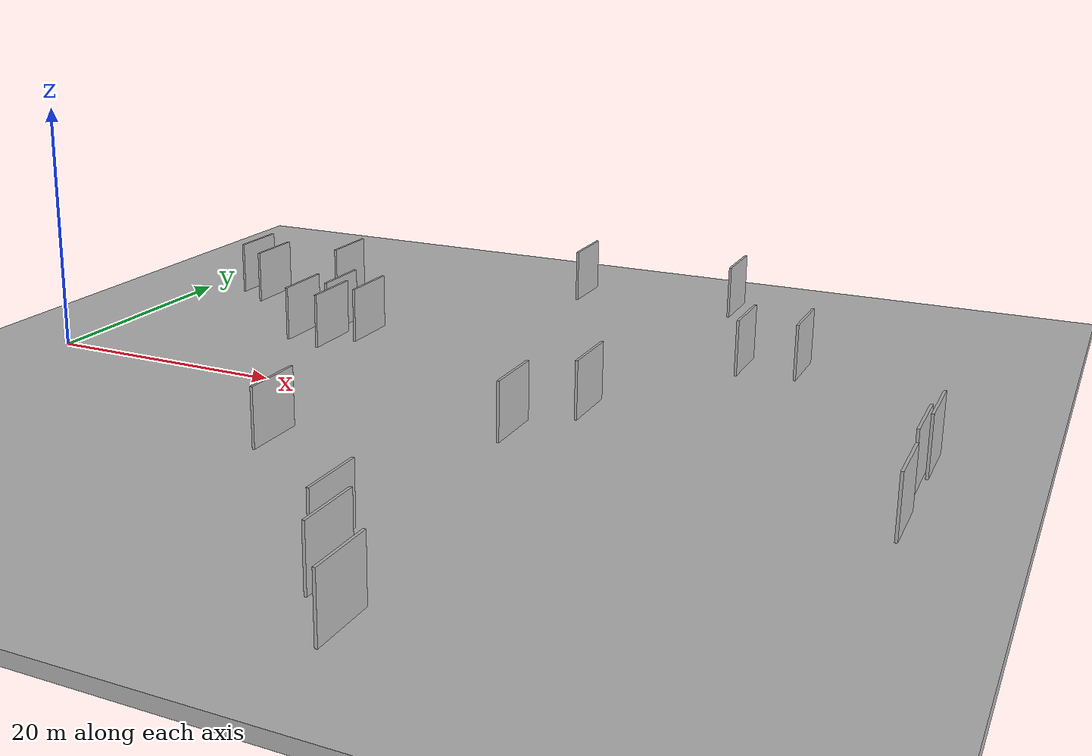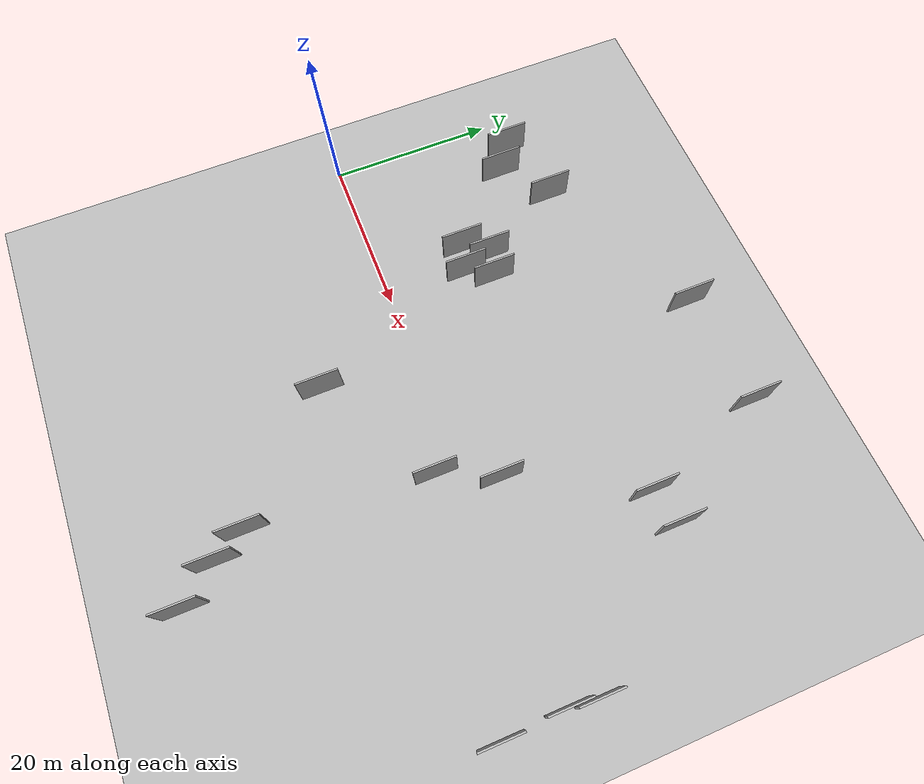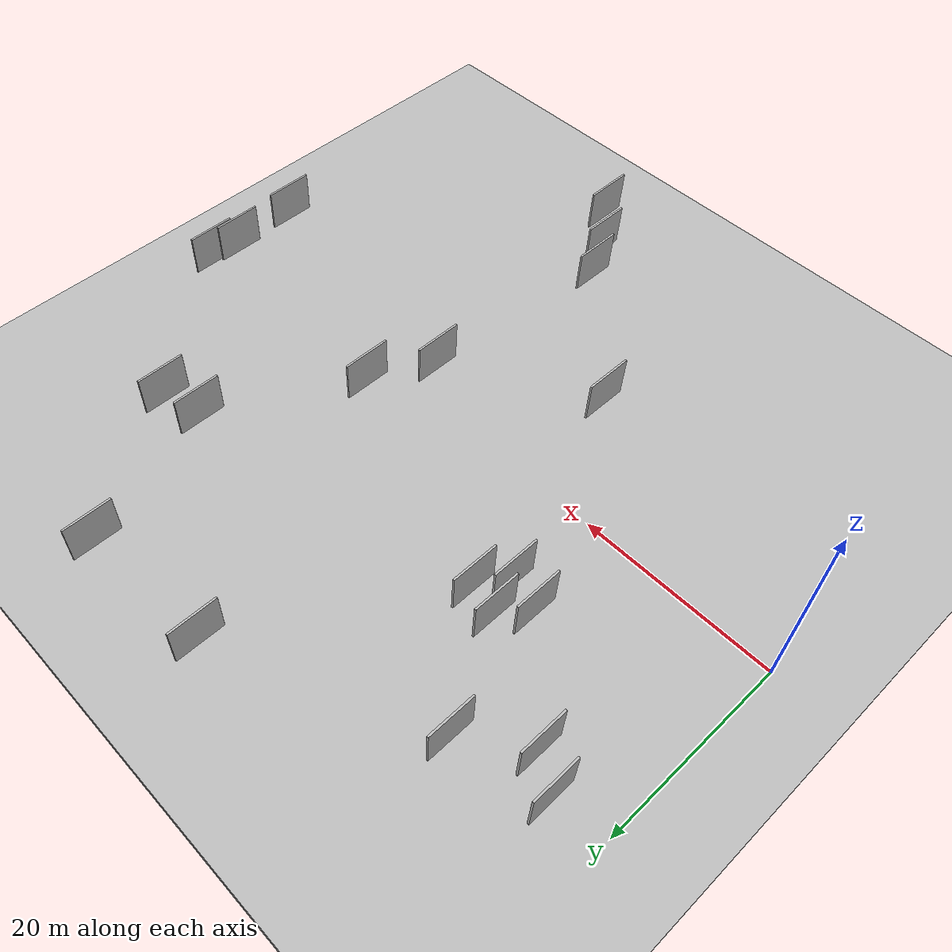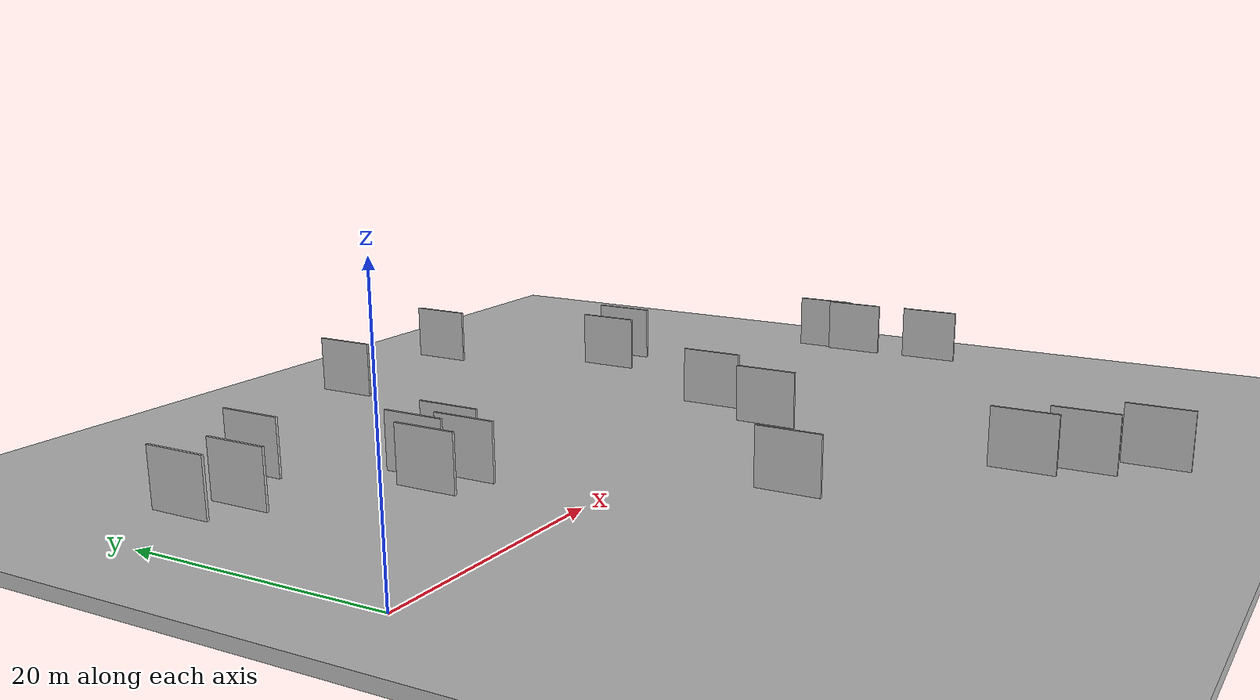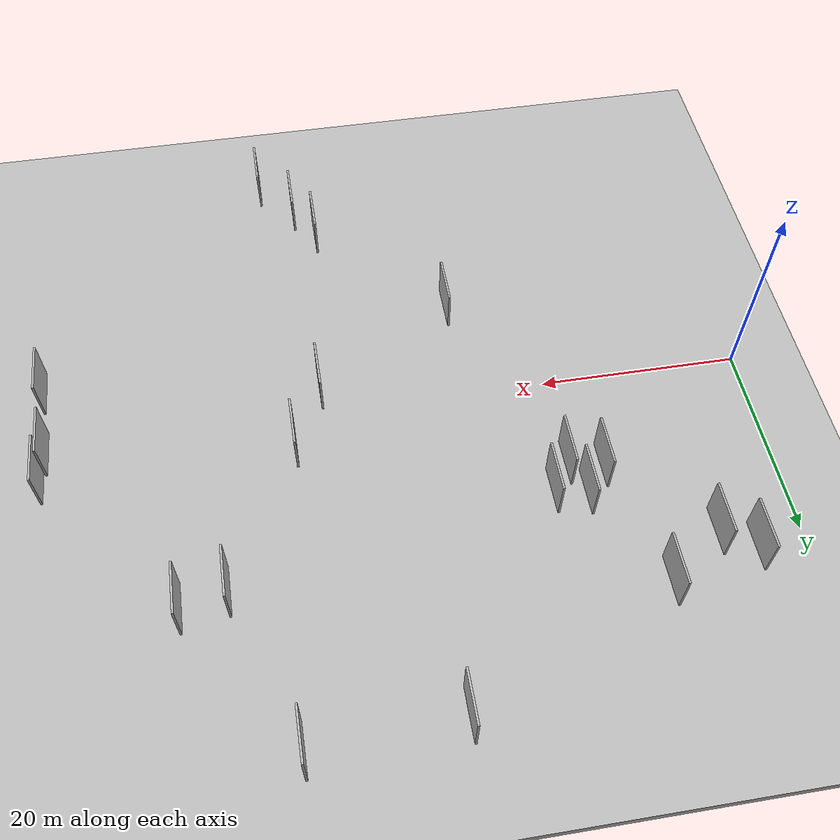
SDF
<?xml version="1.0" encoding="utf-8"?>

<sdf version="1.6">

   <world name="default">

      <gui fullscreen="0">

         <camera name="user_camera">

            <pose>-15 0 4.57585 0 0 0</pose>

            <view_controller>orbit</view_controller>

         </camera>

      </gui>

      <scene>

         <sky>

           <clouds>

             <speed>12</speed>

           </clouds>

         </sky>

         <ambient>0.4 0.4 0.4 1</ambient>

         <background>0.7 0.7 0.7 1</background>

         <shadows>1</shadows>

      </scene>

      <gravity>0 0 -9.8066</gravity>

      <magnetic_field>6e-06 2.3e-05 -4.2e-05</magnetic_field>

      <physics default="0" name="default_physics" type="ode">

         <ode>

            <solver>

               <type>quick</type>

               <iters>10</iters>

               <sor>1.0</sor>

               <use_dynamic_moi_rescaling>0</use_dynamic_moi_rescaling>

            </solver>

            <constraints>

               <cfm>0</cfm>

               <erp>0.2</erp>

               <contact_max_correcting_vel>100</contact_max_correcting_vel>

               <contact_surface_layer>0.001</contact_surface_layer>

            </constraints>

         </ode>

         <max_step_size>0.004</max_step_size>

         <real_time_factor>1</real_time_factor>

         <real_time_update_rate>250</real_time_update_rate>

      </physics>

      <light name="sun" type="directional">

         <cast_shadows>1</cast_shadows>

         <pose>0 0 10 0 0 0</pose>

         <diffuse>0.8 0.8 0.8 1</diffuse>

         <specular>0.2 0.2 0.2 1</specular>

         <attenuation>

            <range>1000</range>

            <constant>0.9</constant>

            <linear>0.01</linear>

            <quadratic>0.001</quadratic>

         </attenuation>

         <direction>-0.5 0.1 -0.9</direction>

      </light>

      <include>

         <name>ground_plane_1</name>

         <uri>model://HANNAS_ground_plane</uri>

         <pose>0 0 0  0 0 0</pose>

      </include>

      <include>

         <name>ground_plane_2</name>

         <uri>model://HANNAS_ground_plane</uri>

         <pose>100 0 0  0 0 0</pose>

      </include>

      <model name="HANNAS_wall_1">

         <static>1</static>

         <pose frame="">42.5222 -2.7553 0.0 0.000000 0.000000 1.570796</pose>

         <link name="link">

            <pose frame="">0 0 2.50 0 0 0</pose>

            <collision name="collision">

               <geometry>

                  <box>

                     <size>5.00 0.2 5.00</size>

                  </box>

               </geometry>

               <max_contacts>10</max_contacts>

               <surface>

                  <contact>

                     <ode/>

                  </contact>

                  <bounce/>

                  <friction>

                     <torsional>

                        <ode/>

                     </torsional>

                     <ode/>

                  </friction>

               </surface>

            </collision>

            <visual name="visual">

               <cast_shadows>0</cast_shadows>

               <geometry>

                  <box>

                     <size>5.00 0.2 5.00</size>

                  </box>

               </geometry>

               <material>

                  <script>

                     <uri>model://HANNAS_wall/materials/scripts</uri>

                     <uri>model://HANNAS_wall/materials/textures</uri>

                     <name>vrc/HANNAS_wall</name>

                  </script>

               </material>

            </visual>

            <self_collide>0</self_collide>

            <enable_wind>0</enable_wind>

            <kinematic>0</kinematic>

         </link>

      </model>

      <model name="HANNAS_wall_2">

         <static>1</static>

         <pose frame="">33.9787 32.7469 0.0 0.000000 0.000000 1.570796</pose>

         <link name="link">

            <pose frame="">0 0 2.50 0 0 0</pose>

            <collision name="collision">

               <geometry>

                  <box>

                     <size>5.00 0.2 5.00</size>

                  </box>

               </geometry>

               <max_contacts>10</max_contacts>

               <surface>

                  <contact>

                     <ode/>

                  </contact>

                  <bounce/>

                  <friction>

                     <torsional>

                        <ode/>

                     </torsional>

                     <ode/>

                  </friction>

               </surface>

            </collision>

            <visual name="visual">

               <cast_shadows>0</cast_shadows>

               <geometry>

                  <box>

                     <size>5.00 0.2 5.00</size>

                  </box>

               </geometry>

               <material>

                  <script>

                     <uri>model://HANNAS_wall/materials/scripts</uri>

                     <uri>model://HANNAS_wall/materials/textures</uri>

                     <name>vrc/HANNAS_wall</name>

                  </script>

               </material>

            </visual>

            <self_collide>0</self_collide>

            <enable_wind>0</enable_wind>

            <kinematic>0</kinematic>

         </link>

      </model>

      <model name="HANNAS_wall_3">

         <static>1</static>

         <pose frame="">13.6824 23.5184 0.0 0.000000 0.000000 1.570796</pose>

         <link name="link">

            <pose frame="">0 0 2.50 0 0 0</pose>

            <collision name="collision">

               <geometry>

                  <box>

                     <size>5.00 0.2 5.00</size>

                  </box>

               </geometry>

               <max_contacts>10</max_contacts>

               <surface>

                  <contact>

                     <ode/>

                  </contact>

                  <bounce/>

                  <friction>

                     <torsional>

                        <ode/>

                     </torsional>

                     <ode/>

                  </friction>

               </surface>

            </collision>

            <visual name="visual">

               <cast_shadows>0</cast_shadows>

               <geometry>

                  <box>

                     <size>5.00 0.2 5.00</size>

                  </box>

               </geometry>

               <material>

                  <script>

                     <uri>model://HANNAS_wall/materials/scripts</uri>

                     <uri>model://HANNAS_wall/materials/textures</uri>

                     <name>vrc/HANNAS_wall</name>

                  </script>

               </material>

            </visual>

            <self_collide>0</self_collide>

            <enable_wind>0</enable_wind>

            <kinematic>0</kinematic>

         </link>

      </model>

      <model name="HANNAS_wall_4">

         <static>1</static>

         <pose frame="">48.0730 33.5196 0.0 0.000000 0.000000 1.570796</pose>

         <link name="link">

            <pose frame="">0 0 2.50 0 0 0</pose>

            <collision name="collision">

               <geometry>

                  <box>

                     <size>5.00 0.2 5.00</size>

                  </box>

               </geometry>

               <max_contacts>10</max_contacts>

               <surface>

                  <contact>

                     <ode/>

                  </contact>

                  <bounce/>

                  <friction>

                     <torsional>

                        <ode/>

                     </torsional>

                     <ode/>

                  </friction>

               </surface>

            </collision>

            <visual name="visual">

               <cast_shadows>0</cast_shadows>

               <geometry>

                  <box>

                     <size>5.00 0.2 5.00</size>

                  </box>

               </geometry>

               <material>

                  <script>

                     <uri>model://HANNAS_wall/materials/scripts</uri>

                     <uri>model://HANNAS_wall/materials/textures</uri>

                     <name>vrc/HANNAS_wall</name>

                  </script>

               </material>

            </visual>

            <self_collide>0</self_collide>

            <enable_wind>0</enable_wind>

            <kinematic>0</kinematic>

         </link>

      </model>

      <model name="HANNAS_wall_5">

         <static>1</static>

         <pose frame="">40.6372 -23.8888 0.0 0.000000 0.000000 1.570796</pose>

         <link name="link">

            <pose frame="">0 0 2.50 0 0 0</pose>

            <collision name="collision">

               <geometry>

                  <box>

                     <size>5.00 0.2 5.00</size>

                  </box>

               </geometry>

               <max_contacts>10</max_contacts>

               <surface>

                  <contact>

                     <ode/>

                  </contact>

                  <bounce/>

                  <friction>

                     <torsional>

                        <ode/>

                     </torsional>

                     <ode/>

                  </friction>

               </surface>

            </collision>

            <visual name="visual">

               <cast_shadows>0</cast_shadows>

               <geometry>

                  <box>

                     <size>5.00 0.2 5.00</size>

                  </box>

               </geometry>

               <material>

                  <script>

                     <uri>model://HANNAS_wall/materials/scripts</uri>

                     <uri>model://HANNAS_wall/materials/textures</uri>

                     <name>vrc/HANNAS_wall</name>

                  </script>

               </material>

            </visual>

            <self_collide>0</self_collide>

            <enable_wind>0</enable_wind>

            <kinematic>0</kinematic>

         </link>

      </model>

      <model name="HANNAS_wall_6">

         <static>1</static>

         <pose frame="">20.0922 9.7761 0.0 0.000000 0.000000 1.570796</pose>

         <link name="link">

            <pose frame="">0 0 2.50 0 0 0</pose>

            <collision name="collision">

               <geometry>

                  <box>

                     <size>5.00 0.2 5.00</size>

                  </box>

               </geometry>

               <max_contacts>10</max_contacts>

               <surface>

                  <contact>

                     <ode/>

                  </contact>

                  <bounce/>

                  <friction>

                     <torsional>

                        <ode/>

                     </torsional>

                     <ode/>

                  </friction>

               </surface>

            </collision>

            <visual name="visual">

               <cast_shadows>0</cast_shadows>

               <geometry>

                  <box>

                     <size>5.00 0.2 5.00</size>

                  </box>

               </geometry>

               <material>

                  <script>

                     <uri>model://HANNAS_wall/materials/scripts</uri>

                     <uri>model://HANNAS_wall/materials/textures</uri>

                     <name>vrc/HANNAS_wall</name>

                  </script>

               </material>

            </visual>

            <self_collide>0</self_collide>

            <enable_wind>0</enable_wind>

            <kinematic>0</kinematic>

         </link>

      </model>

      <model name="HANNAS_wall_7">

         <static>1</static>

         <pose frame="">28.1929 -11.2838 0.0 0.000000 0.000000 1.570796</pose>

         <link name="link">

            <pose frame="">0 0 2.50 0 0 0</pose>

            <collision name="collision">

               <geometry>

                  <box>

                     <size>5.00 0.2 5.00</size>

                  </box>

               </geometry>

               <max_contacts>10</max_contacts>

               <surface>

                  <contact>

                     <ode/>

                  </contact>

                  <bounce/>

                  <friction>

                     <torsional>

                        <ode/>

                     </torsional>

                     <ode/>

                  </friction>

               </surface>

            </collision>

            <visual name="visual">

               <cast_shadows>0</cast_shadows>

               <geometry>

                  <box>

                     <size>5.00 0.2 5.00</size>

                  </box>

               </geometry>

               <material>

                  <script>

                     <uri>model://HANNAS_wall/materials/scripts</uri>

                     <uri>model://HANNAS_wall/materials/textures</uri>

                     <name>vrc/HANNAS_wall</name>

                  </script>

               </material>

            </visual>

            <self_collide>0</self_collide>

            <enable_wind>0</enable_wind>

            <kinematic>0</kinematic>

         </link>

      </model>

      <model name="HANNAS_wall_8">

         <static>1</static>

         <pose frame="">4.9196 21.3900 0.0 0.000000 0.000000 1.570796</pose>

         <link name="link">

            <pose frame="">0 0 2.50 0 0 0</pose>

            <collision name="collision">

               <geometry>

                  <box>

                     <size>5.00 0.2 5.00</size>

                  </box>

               </geometry>

               <max_contacts>10</max_contacts>

               <surface>

                  <contact>

                     <ode/>

                  </contact>

                  <bounce/>

                  <friction>

                     <torsional>

                        <ode/>

                     </torsional>

                     <ode/>

                  </friction>

               </surface>

            </collision>

            <visual name="visual">

               <cast_shadows>0</cast_shadows>

               <geometry>

                  <box>

                     <size>5.00 0.2 5.00</size>

                  </box>

               </geometry>

               <material>

                  <script>

                     <uri>model://HANNAS_wall/materials/scripts</uri>

                     <uri>model://HANNAS_wall/materials/textures</uri>

                     <name>vrc/HANNAS_wall</name>

                  </script>

               </material>

            </visual>

            <self_collide>0</self_collide>

            <enable_wind>0</enable_wind>

            <kinematic>0</kinematic>

         </link>

      </model>

      <model name="HANNAS_wall_9">

         <static>1</static>

         <pose frame="">18.9047 13.2730 0.0 0.000000 0.000000 1.570796</pose>

         <link name="link">

            <pose frame="">0 0 2.50 0 0 0</pose>

            <collision name="collision">

               <geometry>

                  <box>

                     <size>5.00 0.2 5.00</size>

                  </box>

               </geometry>

               <max_contacts>10</max_contacts>

               <surface>

                  <contact>

                     <ode/>

                  </contact>

                  <bounce/>

                  <friction>

                     <torsional>

                        <ode/>

                     </torsional>

                     <ode/>

                  </friction>

               </surface>

            </collision>

            <visual name="visual">

               <cast_shadows>0</cast_shadows>

               <geometry>

                  <box>

                     <size>5.00 0.2 5.00</size>

                  </box>

               </geometry>

               <material>

                  <script>

                     <uri>model://HANNAS_wall/materials/scripts</uri>

                     <uri>model://HANNAS_wall/materials/textures</uri>

                     <name>vrc/HANNAS_wall</name>

                  </script>

               </material>

            </visual>

            <self_collide>0</self_collide>

            <enable_wind>0</enable_wind>

            <kinematic>0</kinematic>

         </link>

      </model>

      <model name="HANNAS_wall_10">

         <static>1</static>

         <pose frame="">53.1489 18.2751 0.0 0.000000 0.000000 1.570796</pose>

         <link name="link">

            <pose frame="">0 0 2.50 0 0 0</pose>

            <collision name="collision">

               <geometry>

                  <box>

                     <size>5.00 0.2 5.00</size>

                  </box>

               </geometry>

               <max_contacts>10</max_contacts>

               <surface>

                  <contact>

                     <ode/>

                  </contact>

                  <bounce/>

                  <friction>

                     <torsional>

                        <ode/>

                     </torsional>

                     <ode/>

                  </friction>

               </surface>

            </collision>

            <visual name="visual">

               <cast_shadows>0</cast_shadows>

               <geometry>

                  <box>

                     <size>5.00 0.2 5.00</size>

                  </box>

               </geometry>

               <material>

                  <script>

                     <uri>model://HANNAS_wall/materials/scripts</uri>

                     <uri>model://HANNAS_wall/materials/textures</uri>

                     <name>vrc/HANNAS_wall</name>

                  </script>

               </material>

            </visual>

            <self_collide>0</self_collide>

            <enable_wind>0</enable_wind>

            <kinematic>0</kinematic>

         </link>

      </model>

      <model name="HANNAS_wall_11">

         <static>1</static>

         <pose frame="">57.5573 19.2066 0.0 0.000000 0.000000 1.570796</pose>

         <link name="link">

            <pose frame="">0 0 2.50 0 0 0</pose>

            <collision name="collision">

               <geometry>

                  <box>

                     <size>5.00 0.2 5.00</size>

                  </box>

               </geometry>

               <max_contacts>10</max_contacts>

               <surface>

                  <contact>

                     <ode/>

                  </contact>

                  <bounce/>

                  <friction>

                     <torsional>

                        <ode/>

                     </torsional>

                     <ode/>

                  </friction>

               </surface>

            </collision>

            <visual name="visual">

               <cast_shadows>0</cast_shadows>

               <geometry>

                  <box>

                     <size>5.00 0.2 5.00</size>

                  </box>

               </geometry>

               <material>

                  <script>

                     <uri>model://HANNAS_wall/materials/scripts</uri>

                     <uri>model://HANNAS_wall/materials/textures</uri>

                     <name>vrc/HANNAS_wall</name>

                  </script>

               </material>

            </visual>

            <self_collide>0</self_collide>

            <enable_wind>0</enable_wind>

            <kinematic>0</kinematic>

         </link>

      </model>

      <model name="HANNAS_wall_12">

         <static>1</static>

         <pose frame="">46.1826 -32.0798 0.0 0.000000 0.000000 1.570796</pose>

         <link name="link">

            <pose frame="">0 0 2.50 0 0 0</pose>

            <collision name="collision">

               <geometry>

                  <box>

                     <size>5.00 0.2 5.00</size>

                  </box>

               </geometry>

               <max_contacts>10</max_contacts>

               <surface>

                  <contact>

                     <ode/>

                  </contact>

                  <bounce/>

                  <friction>

                     <torsional>

                        <ode/>

                     </torsional>

                     <ode/>

                  </friction>

               </surface>

            </collision>

            <visual name="visual">

               <cast_shadows>0</cast_shadows>

               <geometry>

                  <box>

                     <size>5.00 0.2 5.00</size>

                  </box>

               </geometry>

               <material>

                  <script>

                     <uri>model://HANNAS_wall/materials/scripts</uri>

                     <uri>model://HANNAS_wall/materials/textures</uri>

                     <name>vrc/HANNAS_wall</name>

                  </script>

               </material>

            </visual>

            <self_collide>0</self_collide>

            <enable_wind>0</enable_wind>

            <kinematic>0</kinematic>

         </link>

      </model>

      <model name="HANNAS_wall_13">

         <static>1</static>

         <pose frame="">69.9597 -6.5523 0.0 0.000000 0.000000 1.570796</pose>

         <link name="link">

            <pose frame="">0 0 2.50 0 0 0</pose>

            <collision name="collision">

               <geometry>

                  <box>

                     <size>5.00 0.2 5.00</size>

                  </box>

               </geometry>

               <max_contacts>10</max_contacts>

               <surface>

                  <contact>

                     <ode/>

                  </contact>

                  <bounce/>

                  <friction>

                     <torsional>

                        <ode/>

                     </torsional>

                     <ode/>

                  </friction>

               </surface>

            </collision>

            <visual name="visual">

               <cast_shadows>0</cast_shadows>

               <geometry>

                  <box>

                     <size>5.00 0.2 5.00</size>

                  </box>

               </geometry>

               <material>

                  <script>

                     <uri>model://HANNAS_wall/materials/scripts</uri>

                     <uri>model://HANNAS_wall/materials/textures</uri>

                     <name>vrc/HANNAS_wall</name>

                  </script>

               </material>

            </visual>

            <self_collide>0</self_collide>

            <enable_wind>0</enable_wind>

            <kinematic>0</kinematic>

         </link>

      </model>

      <model name="HANNAS_wall_14">

         <static>1</static>

         <pose frame="">8.0907 19.3002 0.0 0.000000 0.000000 1.570796</pose>

         <link name="link">

            <pose frame="">0 0 2.50 0 0 0</pose>

            <collision name="collision">

               <geometry>

                  <box>

                     <size>5.00 0.2 5.00</size>

                  </box>

               </geometry>

               <max_contacts>10</max_contacts>

               <surface>

                  <contact>

                     <ode/>

                  </contact>

                  <bounce/>

                  <friction>

                     <torsional>

                        <ode/>

                     </torsional>

                     <ode/>

                  </friction>

               </surface>

            </collision>

            <visual name="visual">

               <cast_shadows>0</cast_shadows>

               <geometry>

                  <box>

                     <size>5.00 0.2 5.00</size>

                  </box>

               </geometry>

               <material>

                  <script>

                     <uri>model://HANNAS_wall/materials/scripts</uri>

                     <uri>model://HANNAS_wall/materials/textures</uri>

                     <name>vrc/HANNAS_wall</name>

                  </script>

               </material>

            </visual>

            <self_collide>0</self_collide>

            <enable_wind>0</enable_wind>

            <kinematic>0</kinematic>

         </link>

      </model>

      <model name="HANNAS_wall_15">

         <static>1</static>

         <pose frame="">69.9805 3.9175 0.0 0.000000 0.000000 1.570796</pose>

         <link name="link">

            <pose frame="">0 0 2.50 0 0 0</pose>

            <collision name="collision">

               <geometry>

                  <box>

                     <size>5.00 0.2 5.00</size>

                  </box>

               </geometry>

               <max_contacts>10</max_contacts>

               <surface>

                  <contact>

                     <ode/>

                  </contact>

                  <bounce/>

                  <friction>

                     <torsional>

                        <ode/>

                     </torsional>

                     <ode/>

                  </friction>

               </surface>

            </collision>

            <visual name="visual">

               <cast_shadows>0</cast_shadows>

               <geometry>

                  <box>

                     <size>5.00 0.2 5.00</size>

                  </box>

               </geometry>

               <material>

                  <script>

                     <uri>model://HANNAS_wall/materials/scripts</uri>

                     <uri>model://HANNAS_wall/materials/textures</uri>

                     <name>vrc/HANNAS_wall</name>

                  </script>

               </material>

            </visual>

            <self_collide>0</self_collide>

            <enable_wind>0</enable_wind>

            <kinematic>0</kinematic>

         </link>

      </model>

      <model name="HANNAS_wall_16">

         <static>1</static>

         <pose frame="">42.7404 -27.6471 0.0 0.000000 0.000000 1.570796</pose>

         <link name="link">

            <pose frame="">0 0 2.50 0 0 0</pose>

            <collision name="collision">

               <geometry>

                  <box>

                     <size>5.00 0.2 5.00</size>

                  </box>

               </geometry>

               <max_contacts>10</max_contacts>

               <surface>

                  <contact>

                     <ode/>

                  </contact>

                  <bounce/>

                  <friction>

                     <torsional>

                        <ode/>

                     </torsional>

                     <ode/>

                  </friction>

               </surface>

            </collision>

            <visual name="visual">

               <cast_shadows>0</cast_shadows>

               <geometry>

                  <box>

                     <size>5.00 0.2 5.00</size>

                  </box>

               </geometry>

               <material>

                  <script>

                     <uri>model://HANNAS_wall/materials/scripts</uri>

                     <uri>model://HANNAS_wall/materials/textures</uri>

                     <name>vrc/HANNAS_wall</name>

                  </script>

               </material>

            </visual>

            <self_collide>0</self_collide>

            <enable_wind>0</enable_wind>

            <kinematic>0</kinematic>

         </link>

      </model>

      <model name="HANNAS_wall_17">

         <static>1</static>

         <pose frame="">45.6556 3.6859 0.0 0.000000 0.000000 1.570796</pose>

         <link name="link">

            <pose frame="">0 0 2.50 0 0 0</pose>

            <collision name="collision">

               <geometry>

                  <box>

                     <size>5.00 0.2 5.00</size>

                  </box>

               </geometry>

               <max_contacts>10</max_contacts>

               <surface>

                  <contact>

                     <ode/>

                  </contact>

                  <bounce/>

                  <friction>

                     <torsional>

                        <ode/>

                     </torsional>

                     <ode/>

                  </friction>

               </surface>

            </collision>

            <visual name="visual">

               <cast_shadows>0</cast_shadows>

               <geometry>

                  <box>

                     <size>5.00 0.2 5.00</size>

                  </box>

               </geometry>

               <material>

                  <script>

                     <uri>model://HANNAS_wall/materials/scripts</uri>

                     <uri>model://HANNAS_wall/materials/textures</uri>

                     <name>vrc/HANNAS_wall</name>

                  </script>

               </material>

            </visual>

            <self_collide>0</self_collide>

            <enable_wind>0</enable_wind>

            <kinematic>0</kinematic>

         </link>

      </model>

      <model name="HANNAS_wall_18">

         <static>1</static>

         <pose frame="">22.0558 12.6181 0.0 0.000000 0.000000 1.570796</pose>

         <link name="link">

            <pose frame="">0 0 2.50 0 0 0</pose>

            <collision name="collision">

               <geometry>

                  <box>

                     <size>5.00 0.2 5.00</size>

                  </box>

               </geometry>

               <max_contacts>10</max_contacts>

               <surface>

                  <contact>

                     <ode/>

                  </contact>

                  <bounce/>

                  <friction>

                     <torsional>

                        <ode/>

                     </torsional>

                     <ode/>

                  </friction>

               </surface>

            </collision>

            <visual name="visual">

               <cast_shadows>0</cast_shadows>

               <geometry>

                  <box>

                     <size>5.00 0.2 5.00</size>

                  </box>

               </geometry>

               <material>

                  <script>

                     <uri>model://HANNAS_wall/materials/scripts</uri>

                     <uri>model://HANNAS_wall/materials/textures</uri>

                     <name>vrc/HANNAS_wall</name>

                  </script>

               </material>

            </visual>

            <self_collide>0</self_collide>

            <enable_wind>0</enable_wind>

            <kinematic>0</kinematic>

         </link>

      </model>

      <model name="HANNAS_wall_19">

         <static>1</static>

         <pose frame="">69.6133 0.7910 0.0 0.000000 0.000000 1.570796</pose>

         <link name="link">

            <pose frame="">0 0 2.50 0 0 0</pose>

            <collision name="collision">

               <geometry>

                  <box>

                     <size>5.00 0.2 5.00</size>

                  </box>

               </geometry>

               <max_contacts>10</max_contacts>

               <surface>

                  <contact>

                     <ode/>

                  </contact>

                  <bounce/>

                  <friction>

                     <torsional>

                        <ode/>

                     </torsional>

                     <ode/>

                  </friction>

               </surface>

            </collision>

            <visual name="visual">

               <cast_shadows>0</cast_shadows>

               <geometry>

                  <box>

                     <size>5.00 0.2 5.00</size>

                  </box>

               </geometry>

               <material>

                  <script>

                     <uri>model://HANNAS_wall/materials/scripts</uri>

                     <uri>model://HANNAS_wall/materials/textures</uri>

                     <name>vrc/HANNAS_wall</name>

                  </script>

               </material>

            </visual>

            <self_collide>0</self_collide>

            <enable_wind>0</enable_wind>

            <kinematic>0</kinematic>

         </link>

      </model>

      <model name="HANNAS_wall_20">

         <static>1</static>

         <pose frame="">16.7510 10.5949 0.0 0.000000 0.000000 1.570796</pose>

         <link name="link">

            <pose frame="">0 0 2.50 0 0 0</pose>

            <collision name="collision">

               <geometry>

                  <box>

                     <size>5.00 0.2 5.00</size>

                  </box>

               </geometry>

               <max_contacts>10</max_contacts>

               <surface>

                  <contact>

                     <ode/>

                  </contact>

                  <bounce/>

                  <friction>

                     <torsional>

                        <ode/>

                     </torsional>

                     <ode/>

                  </friction>

               </surface>

            </collision>

            <visual name="visual">

               <cast_shadows>0</cast_shadows>

               <geometry>

                  <box>

                     <size>5.00 0.2 5.00</size>

                  </box>

               </geometry>

               <material>

                  <script>

                     <uri>model://HANNAS_wall/materials/scripts</uri>

                     <uri>model://HANNAS_wall/materials/textures</uri>

                     <name>vrc/HANNAS_wall</name>

                  </script>

               </material>

            </visual>

            <self_collide>0</self_collide>

            <enable_wind>0</enable_wind>

            <kinematic>0</kinematic>

         </link>

      </model>

   </world>

</sdf>

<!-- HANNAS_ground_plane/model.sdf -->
<sdf version="1.4">
<model name="HANNAS_ground_plane">
  <static>true</static>
    <link name="link">
      <collision name="collision">
        <geometry>
          <plane>
            <normal>0 0 1</normal>
            <size>1000 1000</size>
          </plane>
        </geometry>
        <surface>
          <friction>
            <ode>
              <mu>100</mu>
              <mu2>50</mu2>
            </ode>
          </friction>
        </surface>
      </collision>
      <visual name="visual">
        <cast_shadows>false</cast_shadows>
        <geometry>
          <plane>
            <normal>0 0 1</normal>
            <size>1000 1000</size>
          </plane>
        </geometry>
        <material>
          <script>
            <uri>model://HANNAS_ground_plane/materials/scripts/HANNAS_ground_plane.material</uri>
	    <uri>model://HANNAS_ground_plane/materials/textures</uri>
            <name>HANNASGroundPlane/Image</name>
          </script>
        </material>
      </visual>
    </link>
  </model>
</sdf>
